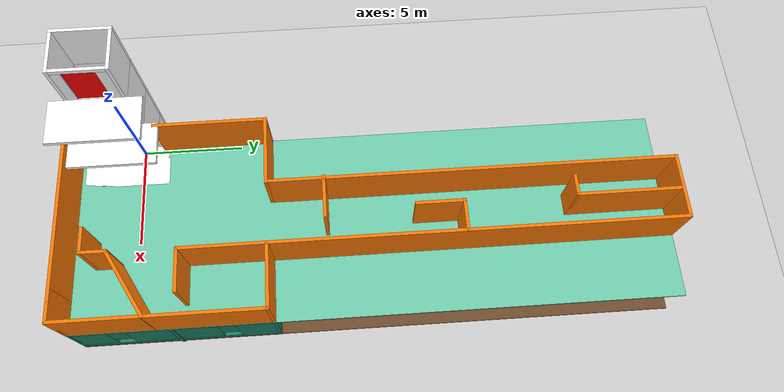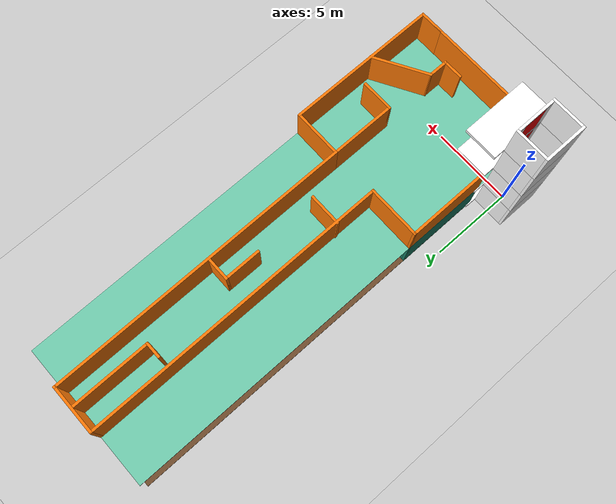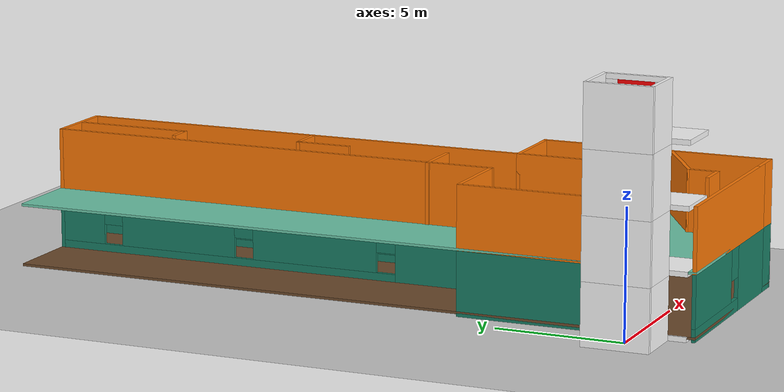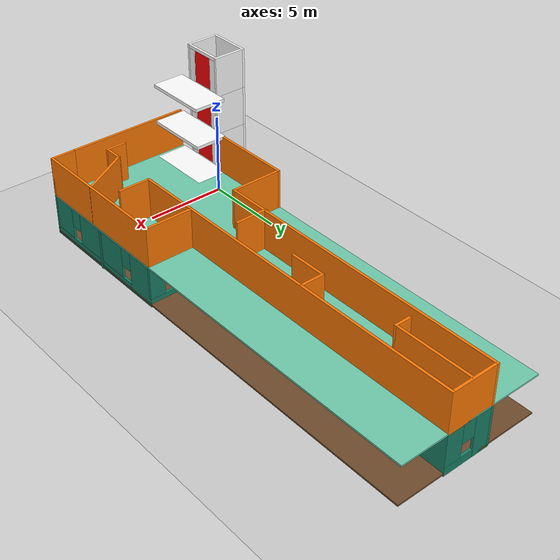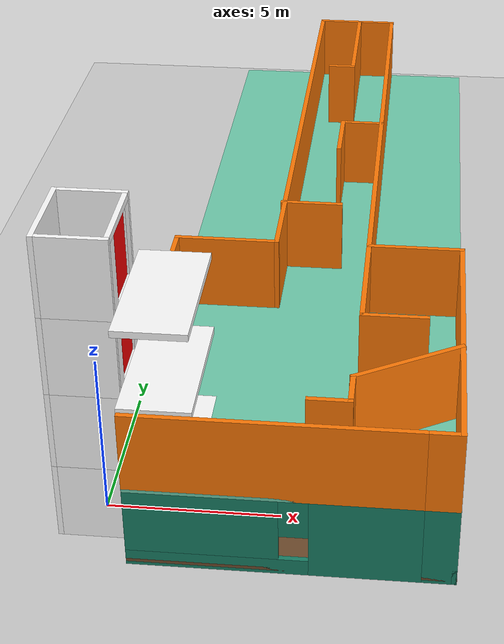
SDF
<?xml version='1.0' encoding='ASCII'?>
<sdf version='1.7'>
  <world name='tarkbot'>
    <physics type="ode">
      <max_step_size>0.003</max_step_size>
      <real_time_factor>1.0</real_time_factor>
    </physics>
    <plugin name='ignition::gazebo::systems::Physics' filename='libignition-gazebo-physics-system.so'/>
    <plugin name='ignition::gazebo::systems::UserCommands' filename='libignition-gazebo-user-commands-system.so'/>
    <plugin name='ignition::gazebo::systems::SceneBroadcaster' filename='libignition-gazebo-scene-broadcaster-system.so'/>

    <scene>
      <ambient>1 1 1 1</ambient>
      <background>0.3 0.7 0.9 1</background>
      <shadows>0</shadows>
      <grid>false</grid>
    </scene>

    <!-- TODO(rkreinin): Fix lighting so that spawning multiple robots does not crash the sim-->

    <model name="ground_plane">
      <static>true</static>
      <link name="link">
        <collision name="collision">
          <geometry>
            <plane>
              <normal>0 0 1</normal>
              <size>100 100</size>
            </plane>
          </geometry>
          <surface>
            <friction>
              <ode>
                <mu>50</mu>
              </ode>
            </friction>
          </surface>
        </collision>
        <visual name="visual">
          <geometry>
            <plane>
              <normal>0 0 1</normal>
              <size>100 100</size>
            </plane>
          </geometry>
          <material>
            <ambient>0.8 0.8 0.8 1</ambient>
            <diffuse>0.8 0.8 0.8 1</diffuse>
            <specular>0.8 0.8 0.8 1</specular>
          </material>
        </visual>
      </link>
    </model>

    <include>
      <uri>/home/fuzailx/ros2_ws/src/turtlebot4_simulator/turtlebot4_ignition_bringup/worlds/elevator.sdf</uri>
    </include>
    <include>
      <uri>/home/fuzailx/ros2_ws/src/turtlebot4_simulator/turtlebot4_ignition_bringup/worlds/building.sdf</uri>
    </include>

  </world>
</sdf>

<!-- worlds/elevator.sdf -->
<sdf version="1.6">
  <model name="elevator">
    <pose>0 0 0.2 0 0 0</pose>

    <!-- ========================= START OF WALLS ========================== -->
    <link name="structure">
      <kinematic>true</kinematic>
      <pose>0.0 0.0 0.0 0 0 0</pose>
      <inertial>
       <mass>1000</mass>
       <inertia>
         <ixx>8013.333333333336</ixx>
         <ixy>0</ixy>
         <ixz>0</ixz>
         <iyy>7893.333333333336</iyy>
         <iyz>0</iyz>
         <izz>546.6666666666667</izz>
       </inertia>
       <pose>0 0 2.4 0 0 0</pose>
     </inertial>

      <visual name="wall_front_bottom_visual_0">
        <pose>0.875 0.0 -0.1 0 0 0</pose>
        <geometry>
       <box>
         <size>0.15 2.3 0.2</size>
       </box>
     </geometry>
        <material>
          <ambient>1.0 1.0 1.0 1</ambient>
          <diffuse>1.0 1.0 1.0 1</diffuse>
          <specular>0.1 0.1 0.1 1</specular>
        </material>
      </visual>
      <collision name="wall_front_bottom_collision_0">
        <pose>0.875 0.0 -0.1 0 0 0</pose>
        <geometry>
       <box>
         <size>0.15 2.3 0.2</size>
       </box>
     </geometry>
      </collision>

      <visual name="wall_front_top_visual_0">
        <pose>0.875 0.0 2.1 0 0 0</pose>
        <geometry>
       <box>
         <size>0.15 2.3 0.2</size>
       </box>
     </geometry>
        <material>
          <ambient>1.0 1.0 1.0 1</ambient>
          <diffuse>1.0 1.0 1.0 1</diffuse>
          <specular>0.1 0.1 0.1 1</specular>
        </material>
      </visual>
      <collision name="wall_front_top_collision_0">
        <pose>0.875 0.0 2.1 0 0 0</pose>
        <geometry>
       <box>
         <size>0.15 2.3 0.2</size>
       </box>
     </geometry>
      </collision>

      <visual name="wall_front_right_visual_0">
        <pose>0.875 -0.925 1.0 0 0 0</pose>
        <geometry>
       <box>
         <size>0.15 0.45 2.0</size>
       </box>
     </geometry>
        <material>
          <ambient>1.0 1.0 1.0 1</ambient>
          <diffuse>1.0 1.0 1.0 1</diffuse>
          <specular>0.1 0.1 0.1 1</specular>
        </material>
      </visual>
      <collision name="wall_front_right_collision_0">
        <pose>0.875 -0.925 1.0 0 0 0</pose>
        <geometry>
       <box>
         <size>0.15 0.45 2.0</size>
       </box>
     </geometry>
      </collision>

      <visual name="wall_front_left_visual_0">
        <pose>0.875 0.925 1.0 0 0 0</pose>
        <geometry>
       <box>
         <size>0.15 0.45 2.0</size>
       </box>
     </geometry>
        <material>
          <ambient>1.0 1.0 1.0 1</ambient>
          <diffuse>1.0 1.0 1.0 1</diffuse>
          <specular>0.1 0.1 0.1 1</specular>
        </material>
      </visual>
      <collision name="wall_front_left_collision_0">
        <pose>0.875 0.925 1.0 0 0 0</pose>
        <geometry>
       <box>
         <size>0.15 0.45 2.0</size>
       </box>
     </geometry>
      </collision>

      <visual name="wall_right_visual_0">
        <pose>0.0 -1.225 1.0 0 0 0</pose>
        <geometry>
       <box>
         <size>1.9 0.15 2.4</size>
       </box>
     </geometry>
        <material>
          <ambient>1.0 1.0 1.0 1</ambient>
          <diffuse>1.0 1.0 1.0 1</diffuse>
          <specular>0.1 0.1 0.1 1</specular>
        </material>
      </visual>
      <collision name="wall_right_collision_0">
        <pose>0.0 -1.225 1.0 0 0 0</pose>
        <geometry>
       <box>
         <size>1.9 0.15 2.4</size>
       </box>
     </geometry>
      </collision>

      <visual name="wall_left_visual_0">
        <pose>0.0 1.225 1.0 0 0 0</pose>
        <geometry>
       <box>
         <size>1.9 0.15 2.4</size>
       </box>
     </geometry>
        <material>
          <ambient>1.0 1.0 1.0 1</ambient>
          <diffuse>1.0 1.0 1.0 1</diffuse>
          <specular>0.1 0.1 0.1 1</specular>
        </material>
      </visual>
      <collision name="wall_left_collision_0">
        <pose>0.0 1.225 1.0 0 0 0</pose>
        <geometry>
       <box>
         <size>1.9 0.15 2.4</size>
       </box>
     </geometry>
      </collision>

      <visual name="wall_rear_visual_0">
        <pose>-1.025 0.0 1.0 0 0 0</pose>
        <geometry>
       <box>
         <size>0.15 2.6 2.4</size>
       </box>
     </geometry>
        <material>
          <ambient>1.0 1.0 1.0 1</ambient>
          <diffuse>1.0 1.0 1.0 1</diffuse>
          <specular>0.1 0.1 0.1 1</specular>
        </material>
      </visual>
      <collision name="wall_rear_collision_0">
        <pose>-1.025 0.0 1.0 0 0 0</pose>
        <geometry>
       <box>
         <size>0.15 2.6 2.4</size>
       </box>
     </geometry>
      </collision>

      <visual name="entrance_visual_0">
        <pose>1.95 0.0 -0.1 0 0 0</pose>
        <geometry>
       <box>
         <size>2.0 4.0 0.2</size>
       </box>
     </geometry>
        <material>
          <ambient>1.0 1.0 1.0 1</ambient>
          <diffuse>1.0 1.0 1.0 1</diffuse>
          <specular>0.1 0.1 0.1 1</specular>
        </material>
      </visual>
      <collision name="entrance_collision_0">
        <pose>1.95 0.0 -0.1 0 0 0</pose>
        <geometry>
       <box>
         <size>2.0 4.0 0.2</size>
       </box>
     </geometry>
      </collision>

      <visual name="wall_front_bottom_visual_1">
        <pose>0.875 0.0 2.3 0 0 0</pose>
        <geometry>
       <box>
         <size>0.15 2.3 0.2</size>
       </box>
     </geometry>
        <material>
          <ambient>1.0 1.0 1.0 1</ambient>
          <diffuse>1.0 1.0 1.0 1</diffuse>
          <specular>0.1 0.1 0.1 1</specular>
        </material>
      </visual>
      <collision name="wall_front_bottom_collision_1">
        <pose>0.875 0.0 2.3 0 0 0</pose>
        <geometry>
       <box>
         <size>0.15 2.3 0.2</size>
       </box>
     </geometry>
      </collision>

      <visual name="wall_front_top_visual_1">
        <pose>0.875 0.0 4.5 0 0 0</pose>
        <geometry>
       <box>
         <size>0.15 2.3 0.2</size>
       </box>
     </geometry>
        <material>
          <ambient>1.0 1.0 1.0 1</ambient>
          <diffuse>1.0 1.0 1.0 1</diffuse>
          <specular>0.1 0.1 0.1 1</specular>
        </material>
      </visual>
      <collision name="wall_front_top_collision_1">
        <pose>0.875 0.0 4.5 0 0 0</pose>
        <geometry>
       <box>
         <size>0.15 2.3 0.2</size>
       </box>
     </geometry>
      </collision>

      <visual name="wall_front_right_visual_1">
        <pose>0.875 -0.925 3.4 0 0 0</pose>
        <geometry>
       <box>
         <size>0.15 0.45 2.0</size>
       </box>
     </geometry>
        <material>
          <ambient>1.0 1.0 1.0 1</ambient>
          <diffuse>1.0 1.0 1.0 1</diffuse>
          <specular>0.1 0.1 0.1 1</specular>
        </material>
      </visual>
      <collision name="wall_front_right_collision_1">
        <pose>0.875 -0.925 3.4 0 0 0</pose>
        <geometry>
       <box>
         <size>0.15 0.45 2.0</size>
       </box>
     </geometry>
      </collision>

      <visual name="wall_front_left_visual_1">
        <pose>0.875 0.925 3.4 0 0 0</pose>
        <geometry>
       <box>
         <size>0.15 0.45 2.0</size>
       </box>
     </geometry>
        <material>
          <ambient>1.0 1.0 1.0 1</ambient>
          <diffuse>1.0 1.0 1.0 1</diffuse>
          <specular>0.1 0.1 0.1 1</specular>
        </material>
      </visual>
      <collision name="wall_front_left_collision_1">
        <pose>0.875 0.925 3.4 0 0 0</pose>
        <geometry>
       <box>
         <size>0.15 0.45 2.0</size>
       </box>
     </geometry>
      </collision>

      <visual name="wall_right_visual_1">
        <pose>0.0 -1.225 3.4 0 0 0</pose>
        <geometry>
       <box>
         <size>1.9 0.15 2.4</size>
       </box>
     </geometry>
        <material>
          <ambient>1.0 1.0 1.0 1</ambient>
          <diffuse>1.0 1.0 1.0 1</diffuse>
          <specular>0.1 0.1 0.1 1</specular>
        </material>
      </visual>
      <collision name="wall_right_collision_1">
        <pose>0.0 -1.225 3.4 0 0 0</pose>
        <geometry>
       <box>
         <size>1.9 0.15 2.4</size>
       </box>
     </geometry>
      </collision>

      <visual name="wall_left_visual_1">
        <pose>0.0 1.225 3.4 0 0 0</pose>
        <geometry>
       <box>
         <size>1.9 0.15 2.4</size>
       </box>
     </geometry>
        <material>
          <ambient>1.0 1.0 1.0 1</ambient>
          <diffuse>1.0 1.0 1.0 1</diffuse>
          <specular>0.1 0.1 0.1 1</specular>
        </material>
      </visual>
      <collision name="wall_left_collision_1">
        <pose>0.0 1.225 3.4 0 0 0</pose>
        <geometry>
       <box>
         <size>1.9 0.15 2.4</size>
       </box>
     </geometry>
      </collision>

      <visual name="wall_rear_visual_1">
        <pose>-1.025 0.0 3.4 0 0 0</pose>
        <geometry>
       <box>
         <size>0.15 2.6 2.4</size>
       </box>
     </geometry>
        <material>
          <ambient>1.0 1.0 1.0 1</ambient>
          <diffuse>1.0 1.0 1.0 1</diffuse>
          <specular>0.1 0.1 0.1 1</specular>
        </material>
      </visual>
      <collision name="wall_rear_collision_1">
        <pose>-1.025 0.0 3.4 0 0 0</pose>
        <geometry>
       <box>
         <size>0.15 2.6 2.4</size>
       </box>
     </geometry>
      </collision>

      <visual name="entrance_visual_1">
        <pose>1.95 0.0 2.3 0 0 0</pose>
        <geometry>
       <box>
         <size>2.0 4.0 0.2</size>
       </box>
     </geometry>
        <material>
          <ambient>1.0 1.0 1.0 1</ambient>
          <diffuse>1.0 1.0 1.0 1</diffuse>
          <specular>0.1 0.1 0.1 1</specular>
        </material>
      </visual>
      <collision name="entrance_collision_1">
        <pose>1.95 0.0 2.3 0 0 0</pose>
        <geometry>
       <box>
         <size>2.0 4.0 0.2</size>
       </box>
     </geometry>
      </collision>

      <visual name="wall_front_bottom_visual_2">
        <pose>0.875 0.0 4.7 0 0 0</pose>
        <geometry>
       <box>
         <size>0.15 2.3 0.2</size>
       </box>
     </geometry>
        <material>
          <ambient>1.0 1.0 1.0 1</ambient>
          <diffuse>1.0 1.0 1.0 1</diffuse>
          <specular>0.1 0.1 0.1 1</specular>
        </material>
      </visual>
      <collision name="wall_front_bottom_collision_2">
        <pose>0.875 0.0 4.7 0 0 0</pose>
        <geometry>
       <box>
         <size>0.15 2.3 0.2</size>
       </box>
     </geometry>
      </collision>

      <visual name="wall_front_top_visual_2">
        <pose>0.875 0.0 6.9 0 0 0</pose>
        <geometry>
       <box>
         <size>0.15 2.3 0.2</size>
       </box>
     </geometry>
        <material>
          <ambient>1.0 1.0 1.0 1</ambient>
          <diffuse>1.0 1.0 1.0 1</diffuse>
          <specular>0.1 0.1 0.1 1</specular>
        </material>
      </visual>
      <collision name="wall_front_top_collision_2">
        <pose>0.875 0.0 6.9 0 0 0</pose>
        <geometry>
       <box>
         <size>0.15 2.3 0.2</size>
       </box>
     </geometry>
      </collision>

      <visual name="wall_front_right_visual_2">
        <pose>0.875 -0.925 5.8 0 0 0</pose>
        <geometry>
       <box>
         <size>0.15 0.45 2.0</size>
       </box>
     </geometry>
        <material>
          <ambient>1.0 1.0 1.0 1</ambient>
          <diffuse>1.0 1.0 1.0 1</diffuse>
          <specular>0.1 0.1 0.1 1</specular>
        </material>
      </visual>
      <collision name="wall_front_right_collision_2">
        <pose>0.875 -0.925 5.8 0 0 0</pose>
        <geometry>
       <box>
         <size>0.15 0.45 2.0</size>
       </box>
     </geometry>
      </collision>

      <visual name="wall_front_left_visual_2">
        <pose>0.875 0.925 5.8 0 0 0</pose>
        <geometry>
       <box>
         <size>0.15 0.45 2.0</size>
       </box>
     </geometry>
        <material>
          <ambient>1.0 1.0 1.0 1</ambient>
          <diffuse>1.0 1.0 1.0 1</diffuse>
          <specular>0.1 0.1 0.1 1</specular>
        </material>
      </visual>
      <collision name="wall_front_left_collision_2">
        <pose>0.875 0.925 5.8 0 0 0</pose>
        <geometry>
       <box>
         <size>0.15 0.45 2.0</size>
       </box>
     </geometry>
      </collision>

      <visual name="wall_right_visual_2">
        <pose>0.0 -1.225 5.8 0 0 0</pose>
        <geometry>
       <box>
         <size>1.9 0.15 2.4</size>
       </box>
     </geometry>
        <material>
          <ambient>1.0 1.0 1.0 1</ambient>
          <diffuse>1.0 1.0 1.0 1</diffuse>
          <specular>0.1 0.1 0.1 1</specular>
        </material>
      </visual>
      <collision name="wall_right_collision_2">
        <pose>0.0 -1.225 5.8 0 0 0</pose>
        <geometry>
       <box>
         <size>1.9 0.15 2.4</size>
       </box>
     </geometry>
      </collision>

      <visual name="wall_left_visual_2">
        <pose>0.0 1.225 5.8 0 0 0</pose>
        <geometry>
       <box>
         <size>1.9 0.15 2.4</size>
       </box>
     </geometry>
        <material>
          <ambient>1.0 1.0 1.0 1</ambient>
          <diffuse>1.0 1.0 1.0 1</diffuse>
          <specular>0.1 0.1 0.1 1</specular>
        </material>
      </visual>
      <collision name="wall_left_collision_2">
        <pose>0.0 1.225 5.8 0 0 0</pose>
        <geometry>
       <box>
         <size>1.9 0.15 2.4</size>
       </box>
     </geometry>
      </collision>

      <visual name="wall_rear_visual_2">
        <pose>-1.025 0.0 5.8 0 0 0</pose>
        <geometry>
       <box>
         <size>0.15 2.6 2.4</size>
       </box>
     </geometry>
        <material>
          <ambient>1.0 1.0 1.0 1</ambient>
          <diffuse>1.0 1.0 1.0 1</diffuse>
          <specular>0.1 0.1 0.1 1</specular>
        </material>
      </visual>
      <collision name="wall_rear_collision_2">
        <pose>-1.025 0.0 5.8 0 0 0</pose>
        <geometry>
       <box>
         <size>0.15 2.6 2.4</size>
       </box>
     </geometry>
      </collision>

      <visual name="entrance_visual_2">
        <pose>1.95 0.0 4.7 0 0 0</pose>
        <geometry>
       <box>
         <size>2.0 4.0 0.2</size>
       </box>
     </geometry>
        <material>
          <ambient>1.0 1.0 1.0 1</ambient>
          <diffuse>1.0 1.0 1.0 1</diffuse>
          <specular>0.1 0.1 0.1 1</specular>
        </material>
      </visual>
      <collision name="entrance_collision_2">
        <pose>1.95 0.0 4.7 0 0 0</pose>
        <geometry>
       <box>
         <size>2.0 4.0 0.2</size>
       </box>
     </geometry>
      </collision>

      <visual name="wall_front_bottom_visual_3">
        <pose>0.875 0.0 7.1 0 0 0</pose>
        <geometry>
       <box>
         <size>0.15 2.3 0.2</size>
       </box>
     </geometry>
        <material>
          <ambient>1.0 1.0 1.0 1</ambient>
          <diffuse>1.0 1.0 1.0 1</diffuse>
          <specular>0.1 0.1 0.1 1</specular>
        </material>
      </visual>
      <collision name="wall_front_bottom_collision_3">
        <pose>0.875 0.0 7.1 0 0 0</pose>
        <geometry>
       <box>
         <size>0.15 2.3 0.2</size>
       </box>
     </geometry>
      </collision>

      <visual name="wall_front_top_visual_3">
        <pose>0.875 0.0 9.3 0 0 0</pose>
        <geometry>
       <box>
         <size>0.15 2.3 0.2</size>
       </box>
     </geometry>
        <material>
          <ambient>1.0 1.0 1.0 1</ambient>
          <diffuse>1.0 1.0 1.0 1</diffuse>
          <specular>0.1 0.1 0.1 1</specular>
        </material>
      </visual>
      <collision name="wall_front_top_collision_3">
        <pose>0.875 0.0 9.3 0 0 0</pose>
        <geometry>
       <box>
         <size>0.15 2.3 0.2</size>
       </box>
     </geometry>
      </collision>

      <visual name="wall_front_right_visual_3">
        <pose>0.875 -0.925 8.2 0 0 0</pose>
        <geometry>
       <box>
         <size>0.15 0.45 2.0</size>
       </box>
     </geometry>
        <material>
          <ambient>1.0 1.0 1.0 1</ambient>
          <diffuse>1.0 1.0 1.0 1</diffuse>
          <specular>0.1 0.1 0.1 1</specular>
        </material>
      </visual>
      <collision name="wall_front_right_collision_3">
        <pose>0.875 -0.925 8.2 0 0 0</pose>
        <geometry>
       <box>
         <size>0.15 0.45 2.0</size>
       </box>
     </geometry>
      </collision>

      <visual name="wall_front_left_visual_3">
        <pose>0.875 0.925 8.2 0 0 0</pose>
        <geometry>
       <box>
         <size>0.15 0.45 2.0</size>
       </box>
     </geometry>
        <material>
          <ambient>1.0 1.0 1.0 1</ambient>
          <diffuse>1.0 1.0 1.0 1</diffuse>
          <specular>0.1 0.1 0.1 1</specular>
        </material>
      </visual>
      <collision name="wall_front_left_collision_3">
        <pose>0.875 0.925 8.2 0 0 0</pose>
        <geometry>
       <box>
         <size>0.15 0.45 2.0</size>
       </box>
     </geometry>
      </collision>

      <visual name="wall_right_visual_3">
        <pose>0.0 -1.225 8.2 0 0 0</pose>
        <geometry>
       <box>
         <size>1.9 0.15 2.4</size>
       </box>
     </geometry>
        <material>
          <ambient>1.0 1.0 1.0 1</ambient>
          <diffuse>1.0 1.0 1.0 1</diffuse>
          <specular>0.1 0.1 0.1 1</specular>
        </material>
      </visual>
      <collision name="wall_right_collision_3">
        <pose>0.0 -1.225 8.2 0 0 0</pose>
        <geometry>
       <box>
         <size>1.9 0.15 2.4</size>
       </box>
     </geometry>
      </collision>

      <visual name="wall_left_visual_3">
        <pose>0.0 1.225 8.2 0 0 0</pose>
        <geometry>
       <box>
         <size>1.9 0.15 2.4</size>
       </box>
     </geometry>
        <material>
          <ambient>1.0 1.0 1.0 1</ambient>
          <diffuse>1.0 1.0 1.0 1</diffuse>
          <specular>0.1 0.1 0.1 1</specular>
        </material>
      </visual>
      <collision name="wall_left_collision_3">
        <pose>0.0 1.225 8.2 0 0 0</pose>
        <geometry>
       <box>
         <size>1.9 0.15 2.4</size>
       </box>
     </geometry>
      </collision>

      <visual name="wall_rear_visual_3">
        <pose>-1.025 0.0 8.2 0 0 0</pose>
        <geometry>
       <box>
         <size>0.15 2.6 2.4</size>
       </box>
     </geometry>
        <material>
          <ambient>1.0 1.0 1.0 1</ambient>
          <diffuse>1.0 1.0 1.0 1</diffuse>
          <specular>0.1 0.1 0.1 1</specular>
        </material>
      </visual>
      <collision name="wall_rear_collision_3">
        <pose>-1.025 0.0 8.2 0 0 0</pose>
        <geometry>
       <box>
         <size>0.15 2.6 2.4</size>
       </box>
     </geometry>
      </collision>

      <visual name="entrance_visual_3">
        <pose>1.95 0.0 7.1 0 0 0</pose>
        <geometry>
       <box>
         <size>2.0 4.0 0.2</size>
       </box>
     </geometry>
        <material>
          <ambient>1.0 1.0 1.0 1</ambient>
          <diffuse>1.0 1.0 1.0 1</diffuse>
          <specular>0.1 0.1 0.1 1</specular>
        </material>
      </visual>
      <collision name="entrance_collision_3">
        <pose>1.95 0.0 7.1 0 0 0</pose>
        <geometry>
       <box>
         <size>2.0 4.0 0.2</size>
       </box>
     </geometry>
      </collision>

    </link>
    <joint name="foundation" type="fixed">
      <parent>world</parent>
      <child>structure</child>
    </joint>
    <!-- ========================== END OF WALLS =========================== -->

    <!-- ========================= START OF DOORS ========================== -->

    <link name="door_panel_0">
      <pose>0.85 0.0 1.0 0 0 0</pose>
      <inertial>
       <mass>20</mass>
       <inertia>
         <ixx>9.933333333333334</ixx>
         <ixy>0</ixy>
         <ixz>0</ixz>
         <iyy>6.683333333333333</iyy>
         <iyz>0</iyz>
         <izz>3.2833333333333328</izz>
       </inertia>
       <pose>0 0 0 0 0 0</pose>
     </inertial>
      <visual name="door_visual_0">
        <geometry>
       <box>
         <size>0.1 1.4 2.0</size>
       </box>
     </geometry>
        <material>
          <ambient>1.0 0.0 0.0 1</ambient>
          <diffuse>1.0 0.0 0.0 1</diffuse>
          <specular>0.1 0.1 0.1 1</specular>
        </material>
      </visual>
      <collision name="door_collision_0">
        <geometry>
       <box>
         <size>0.1 1.4 2.0</size>
       </box>
     </geometry>
      </collision>
    </link>
    <joint name="door_0" type="prismatic">
      <parent>structure</parent>
      <child>door_panel_0</child>
      <axis>
        <xyz>0 1 0</xyz>
        <limit>
          <lower>0</lower>
          <upper>1.4</upper>
          <effort>5000</effort>
          <velocity>0.3</velocity>
        </limit>
        <dynamics>
          <damping>30</damping>
        </dynamics>
      </axis>
    </joint>
    <plugin
      filename="ignition-gazebo-joint-position-controller-system"
      name="ignition::gazebo::systems::JointPositionController">
      <joint_name>door_0</joint_name>
      <p_gain>60</p_gain>
      <i_gain>0</i_gain>
      <d_gain>40</d_gain>
      <cmd_min>-20</cmd_min>
      <cmd_max>20</cmd_max>
    </plugin>

    <link name="door_panel_1">
      <pose>0.85 0.0 3.4 0 0 0</pose>
      <inertial>
       <mass>20</mass>
       <inertia>
         <ixx>9.933333333333334</ixx>
         <ixy>0</ixy>
         <ixz>0</ixz>
         <iyy>6.683333333333333</iyy>
         <iyz>0</iyz>
         <izz>3.2833333333333328</izz>
       </inertia>
       <pose>0 0 0 0 0 0</pose>
     </inertial>
      <visual name="door_visual_1">
        <geometry>
       <box>
         <size>0.1 1.4 2.0</size>
       </box>
     </geometry>
        <material>
          <ambient>1.0 0.0 0.0 1</ambient>
          <diffuse>1.0 0.0 0.0 1</diffuse>
          <specular>0.1 0.1 0.1 1</specular>
        </material>
      </visual>
      <collision name="door_collision_1">
        <geometry>
       <box>
         <size>0.1 1.4 2.0</size>
       </box>
     </geometry>
      </collision>
    </link>
    <joint name="door_1" type="prismatic">
      <parent>structure</parent>
      <child>door_panel_1</child>
      <axis>
        <xyz>0 1 0</xyz>
        <limit>
          <lower>0</lower>
          <upper>1.4</upper>
          <effort>5000</effort>
          <velocity>0.3</velocity>
        </limit>
        <dynamics>
          <damping>30</damping>
        </dynamics>
      </axis>
    </joint>
    <plugin
      filename="ignition-gazebo-joint-position-controller-system"
      name="ignition::gazebo::systems::JointPositionController">
      <joint_name>door_1</joint_name>
      <p_gain>60</p_gain>
      <i_gain>0</i_gain>
      <d_gain>40</d_gain>
      <cmd_min>-20</cmd_min>
      <cmd_max>20</cmd_max>
    </plugin>

    <link name="door_panel_2">
      <pose>0.85 0.0 5.8 0 0 0</pose>
      <inertial>
       <mass>20</mass>
       <inertia>
         <ixx>9.933333333333334</ixx>
         <ixy>0</ixy>
         <ixz>0</ixz>
         <iyy>6.683333333333333</iyy>
         <iyz>0</iyz>
         <izz>3.2833333333333328</izz>
       </inertia>
       <pose>0 0 0 0 0 0</pose>
     </inertial>
      <visual name="door_visual_2">
        <geometry>
       <box>
         <size>0.1 1.4 2.0</size>
       </box>
     </geometry>
        <material>
          <ambient>1.0 0.0 0.0 1</ambient>
          <diffuse>1.0 0.0 0.0 1</diffuse>
          <specular>0.1 0.1 0.1 1</specular>
        </material>
      </visual>
      <collision name="door_collision_2">
        <geometry>
       <box>
         <size>0.1 1.4 2.0</size>
       </box>
     </geometry>
      </collision>
    </link>
    <joint name="door_2" type="prismatic">
      <parent>structure</parent>
      <child>door_panel_2</child>
      <axis>
        <xyz>0 1 0</xyz>
        <limit>
          <lower>0</lower>
          <upper>1.4</upper>
          <effort>5000</effort>
          <velocity>0.1</velocity>
        </limit>
        <dynamics>
          <damping>30</damping>
        </dynamics>
      </axis>
    </joint>
    <plugin
      filename="ignition-gazebo-joint-position-controller-system"
      name="ignition::gazebo::systems::JointPositionController">
      <joint_name>door_2</joint_name>
      <p_gain>60</p_gain>
      <i_gain>0</i_gain>
      <d_gain>40</d_gain>
      <cmd_min>-20</cmd_min>
      <cmd_max>20</cmd_max>
    </plugin>

    <link name="door_panel_3">
      <pose>0.85 0.0 8.2 0 0 0</pose>
      <inertial>
       <mass>20</mass>
       <inertia>
         <ixx>9.933333333333334</ixx>
         <ixy>0</ixy>
         <ixz>0</ixz>
         <iyy>6.683333333333333</iyy>
         <iyz>0</iyz>
         <izz>3.2833333333333328</izz>
       </inertia>
       <pose>0 0 0 0 0 0</pose>
     </inertial>
      <visual name="door_visual_3">
        <geometry>
       <box>
         <size>0.1 1.4 2.0</size>
       </box>
     </geometry>
        <material>
          <ambient>1.0 0.0 0.0 1</ambient>
          <diffuse>1.0 0.0 0.0 1</diffuse>
          <specular>0.1 0.1 0.1 1</specular>
        </material>
      </visual>
      <collision name="door_collision_3">
        <geometry>
       <box>
         <size>0.1 1.4 2.0</size>
       </box>
     </geometry>
      </collision>
    </link>
    <joint name="door_3" type="prismatic">
      <parent>structure</parent>
      <child>door_panel_3</child>
      <axis>
        <xyz>0 1 0</xyz>
        <limit>
          <lower>0</lower>
          <upper>1.4</upper>
          <effort>5000</effort>
          <velocity>0.1</velocity>
        </limit>
        <dynamics>
          <damping>30</damping>
        </dynamics>
      </axis>
    </joint>
    <plugin
      filename="ignition-gazebo-joint-position-controller-system"
      name="ignition::gazebo::systems::JointPositionController">
      <joint_name>door_3</joint_name>
      <p_gain>60</p_gain>
      <i_gain>0</i_gain>
      <d_gain>40</d_gain>
      <cmd_min>-20</cmd_min>
      <cmd_max>20</cmd_max>
    </plugin>

    <!-- ========================== END OF DOORS =========================== -->

    <!-- ========================= START OF CABIN ========================== -->
    <link name="cabin">
      <pose>0.0 0.0 0.0 0 0 0</pose>
      <inertial>
       <mass>200</mass>
       <inertia>
         <ixx>147.33333333333334</ixx>
         <ixy>0</ixy>
         <ixz>0</ixz>
         <iyy>123.33333333333336</iyy>
         <iyz>0</iyz>
         <izz>109.33333333333333</izz>
       </inertia>
       <pose>0 0 1.1 0 0 0</pose>
     </inertial>

      <light type="spot" name="spot_0">
        <pose>0 -0.5 2.09 0 0 0</pose>
        <diffuse>1 1 1 1</diffuse>
        <specular>.2 .2 .2 1</specular>
        <attenuation>
          <range>2.2</range>
          <linear>0.2</linear>
          <constant>0.05</constant>
          <quadratic>0.01</quadratic>
        </attenuation>
        <direction>0 0 1</direction>
        <spot>
          <inner_angle>0.1</inner_angle>
          <outer_angle>1.0</outer_angle>
          <falloff>0.8</falloff>
        </spot>
        <cast_shadows>true</cast_shadows>
      </light>

      <light type="spot" name="spot_1">
        <pose>0 0.5 2.09 0 0 0</pose>
        <diffuse>1 1 1 1</diffuse>
        <specular>.2 .2 .2 1</specular>
        <attenuation>
          <range>2.2</range>
          <linear>0.2</linear>
          <constant>0.05</constant>
          <quadratic>0.01</quadratic>
        </attenuation>
        <direction>0 0 1</direction>
        <spot>
          <inner_angle>0.1</inner_angle>
          <outer_angle>1.0</outer_angle>
          <falloff>0.8</falloff>
        </spot>
        <cast_shadows>true</cast_shadows>
      </light>

      <visual name="cabin_bottom_visual">
        <pose>0 0 -0.05 0 0 0</pose>
        <geometry>
       <box>
         <size>1.6 2.0 0.1</size>5
       </box>
     </geometry>
        <material>
          <ambient>0.175 0.175 0.175 1</ambient>
          <diffuse>0.175 0.175 0.175 1</diffuse>
          <specular>0.1 0.1 0.1 1</specular>
        </material>
      </visual>
      <collision name="cabin_bottom_collision">
        <pose>0 0 -0.05 0 0 0</pose>
        <geometry>
       <box>
         <size>1.6 2.0 0.1</size>
       </box>
     </geometry>
      </collision>

      <visual name="cabin_top_visual">
        <pose>0 0 2.25 0 0 0</pose>
        <geometry>
       <box>
         <size>1.6 2.0 0.1</size>
       </box>
     </geometry>
        <material>
          <ambient>0.175 0.175 0.175 1</ambient>
          <diffuse>0.175 0.175 0.175 1</diffuse>
          <specular>0.1 0.1 0.1 1</specular>
        </material>
      </visual>
      <collision name="cabin_top_collision">
        <pose>0 0 2.25 0 0 0</pose>
        <geometry>
       <box>
         <size>1.6 2.0 0.1</size>
       </box>
     </geometry>
      </collision>

      <visual name="cabin_right_visual">
        <pose>0 -1.05 1.1 0 0 0</pose>
        <geometry>
       <box>
         <size>1.6 0.1 2.4</size>
       </box>
     </geometry>
        <material>
          <ambient>0.175 0.175 0.175 1</ambient>
          <diffuse>0.175 0.175 0.175 1</diffuse>
          <specular>0.1 0.1 0.1 1</specular>
        </material>
      </visual>
      <collision name="cabin_right_collision">
        <pose>0 -1.05 1.1 0 0 0</pose>
        <geometry>
       <box>
         <size>1.6 0.1 2.4</size>
       </box>
     </geometry>
      </collision>

      <visual name="cabin_left_visual">
        <pose>0 1.05 1.1 0 0 0</pose>
        <geometry>
       <box>
         <size>1.6 0.1 2.4</size>
       </box>
     </geometry>
        <material>
          <ambient>0.175 0.175 0.175 1</ambient>
          <diffuse>0.175 0.175 0.175 1</diffuse>
          <specular>0.1 0.1 0.1 1</specular>
        </material>
      </visual>
      <collision name="cabin_left_collision">
        <pose>0 1.05 1.1 0 0 0</pose>
        <geometry>
       <box>
         <size>1.6 0.1 2.4</size>
       </box>
     </geometry>
      </collision>

      <visual name="cabin_rear_visual">
        <pose>-0.85 0 1.1 0 0 0</pose>
        <geometry>
       <box>
         <size>0.1 2.2 2.4</size>
       </box>
     </geometry>
        <material>
          <ambient>0.175 0.175 0.175 1</ambient>
          <diffuse>0.175 0.175 0.175 1</diffuse>
          <specular>0.1 0.1 0.1 1</specular>
        </material>
      </visual>
      <collision name="cabin_rear_collision">
        <pose>-0.85 0 1.1 0 0 0</pose>
        <geometry>
       <box>
         <size>0.1 2.2 2.4</size>
       </box>
     </geometry>
      </collision>

    </link>
    <joint name="lift" type="prismatic">
      <parent>structure</parent>
      <child>cabin</child>
      <axis>
        <xyz>0 0 1</xyz>
        <limit>
          <lower>0</lower>
          <upper>7.200000000000001</upper>
          <effort>50000000</effort>
          <velocity>0.5</velocity>
        </limit>
        <dynamics>
          <damping>180000</damping>
        </dynamics>
      </axis>
    </joint>
    <plugin
      filename="ignition-gazebo-joint-position-controller-system"
      name="ignition::gazebo::systems::JointPositionController">
      <joint_name>lift</joint_name>
      <p_gain>4000000</p_gain>
      <i_gain>2000</i_gain>
      <d_gain>5000</d_gain>
      <i_min>-2000</i_min>
      <i_max>2000</i_max>
      <cmd_min>-80000</cmd_min>
      <cmd_max>120000</cmd_max>
    </plugin>
    <!-- ========================== END OF CABIN =========================== -->

    <!-- =================== START OF FLOOR REFERENCES ===================== -->

    <link name="floor_0">
      <pose>0.0 0.0 0.0 0 0 0</pose>
    </link>
    <joint name="floor_0_joint" type="fixed">
      <parent>structure</parent>
      <child>floor_0</child>
    </joint>

    <link name="floor_1">
      <pose>0.0 0.0 2.4 0 0 0</pose>
    </link>
    <joint name="floor_1_joint" type="fixed">
      <parent>structure</parent>
      <child>floor_1</child>
    </joint>

    <link name="floor_2">
      <pose>0.0 0.0 4.8 0 0 0</pose>
    </link>
    <joint name="floor_2_joint" type="fixed">
      <parent>structure</parent>
      <child>floor_2</child>
    </joint>

    <link name="floor_3">
      <pose>0.0 0.0 7.2 0 0 0</pose>
    </link>
    <joint name="floor_3_joint" type="fixed">
      <parent>structure</parent>
      <child>floor_3</child>
    </joint>

    <!-- ==================== END OF FLOOR REFERENCES ====================== -->

    <!-- ===================== START OF DOOR LIDARS ======================== -->

    <link name="door_lidar_0">
      <pose>0.875 -0.7 0.2 1.5707963267948966 0 1.5707963267948966</pose>
      <sensor name="sensor" type="gpu_lidar">
        <topic>model/elevator/door_0/lidar</topic>
        <update_rate>10</update_rate>
        <lidar>
          <scan>
            <horizontal>
              <samples>1</samples>
              <resolution>1</resolution>
              <min_angle>0</min_angle>
              <max_angle>0</max_angle>
            </horizontal>
          </scan>
          <range>
            <min>0.001</min>
            <max>1.395</max>
            <resolution>0.01</resolution>
          </range>
        </lidar>
      </sensor>
    </link>
    <joint name="door_lidar_0_joint" type="fixed">
      <parent>structure</parent>
      <child>door_lidar_0</child>
    </joint>

    <link name="door_lidar_1">
      <pose>0.875 -0.7 2.6 1.5707963267948966 0 1.5707963267948966</pose>
      <sensor name="sensor" type="gpu_lidar">
        <topic>model/elevator/door_1/lidar</topic>
        <update_rate>10</update_rate>
        <lidar>
          <scan>
            <horizontal>
              <samples>1</samples>
              <resolution>1</resolution>
              <min_angle>0</min_angle>
              <max_angle>0</max_angle>
            </horizontal>
          </scan>
          <range>
            <min>0.001</min>
            <max>1.395</max>
            <resolution>0.01</resolution>
          </range>
        </lidar>
      </sensor>
    </link>
    <joint name="door_lidar_1_joint" type="fixed">
      <parent>structure</parent>
      <child>door_lidar_1</child>
    </joint>

    <link name="door_lidar_2">
      <pose>0.875 -0.7 5.0 1.5707963267948966 0 1.5707963267948966</pose>
      <sensor name="sensor" type="gpu_lidar">
        <topic>model/elevator/door_2/lidar</topic>
        <update_rate>10</update_rate>
        <lidar>
          <scan>
            <horizontal>
              <samples>1</samples>
              <resolution>1</resolution>
              <min_angle>0</min_angle>
              <max_angle>0</max_angle>
            </horizontal>
          </scan>
          <range>
            <min>0.001</min>
            <max>1.395</max>
            <resolution>0.01</resolution>
          </range>
        </lidar>
      </sensor>
    </link>
    <joint name="door_lidar_2_joint" type="fixed">
      <parent>structure</parent>
      <child>door_lidar_2</child>
    </joint>

    <link name="door_lidar_3">
      <pose>0.875 -0.7 7.4 1.5707963267948966 0 1.5707963267948966</pose>
      <sensor name="sensor" type="gpu_lidar">
        <topic>model/elevator/door_3/lidar</topic>
        <update_rate>10</update_rate>
        <lidar>
          <scan>
            <horizontal>
              <samples>1</samples>
              <resolution>1</resolution>
              <min_angle>0</min_angle>
              <max_angle>0</max_angle>
            </horizontal>
          </scan>
          <range>
            <min>0.001</min>
            <max>1.395</max>
            <resolution>0.01</resolution>
          </range>
        </lidar>
      </sensor>
    </link>
    <joint name="door_lidar_3_joint" type="fixed">
      <parent>structure</parent>
      <child>door_lidar_3</child>
    </joint>

    <!-- ====================== END OF DOOR LIDARS ========================= -->

    <!-- ====================== START OF CONTROLLER ======================== -->
    <plugin
      filename="ignition-gazebo-elevator-system"
      name="ignition::gazebo::systems::Elevator">
    </plugin>
    <!-- ======================= END OF CONTROLLER ========================= -->

  </model>
</sdf>
